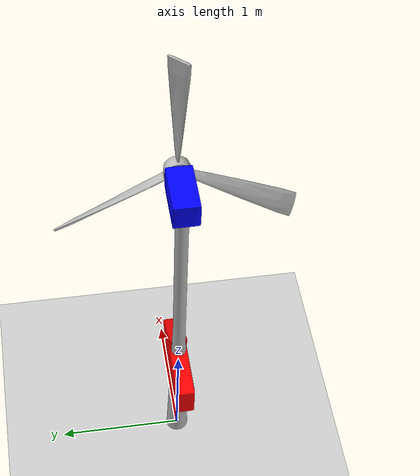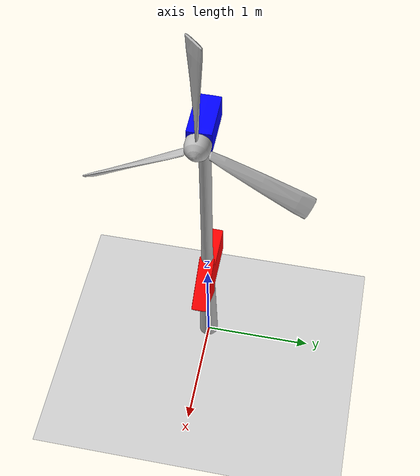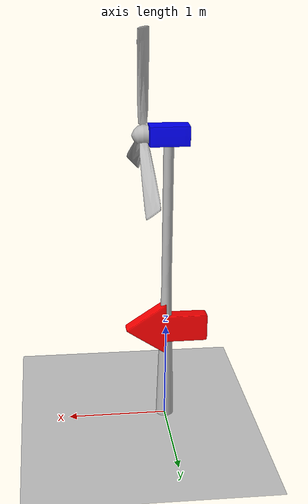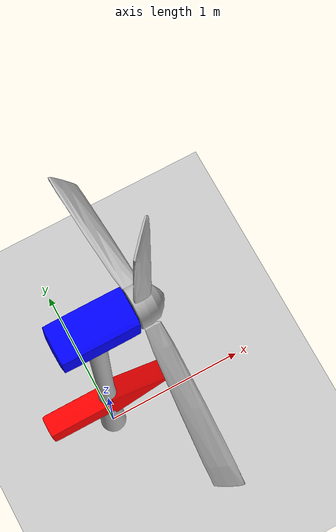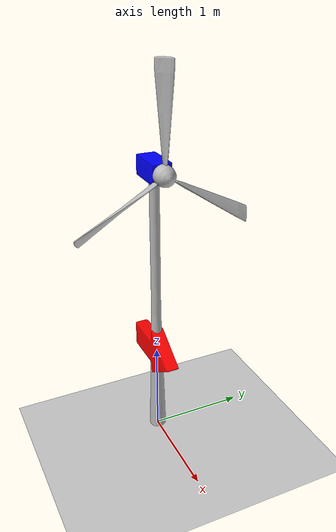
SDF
<?xml version="1.0" ?>
<sdf version="1.5">
  <world name="default">
    <include>
      <uri>model://ground_plane</uri>
    </include>
    <include>
      <uri>model://sun</uri>
    </include>

    <include>
      <uri>model://wind_arrow</uri>
    </include>

    <include>
      <uri>model://wind_power_plant</uri>
    </include>

  </world>
</sdf>

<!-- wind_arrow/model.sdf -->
<sdf version="1.5">
    <model name="wind_arrow">
      <pose>0 0 1  0 0 0</pose>
      <static>true</static>
      <link name="arrow_body">
        <visual name="visual">
          <geometry>
            <mesh><uri>model://wind_arrow/meshes/arrow.dae</uri></mesh>
          </geometry>

	    <material>
	      <ambient>1 0 0 1</ambient>
	      <diffuse>1 0 0 1</diffuse>
	      <specular>0.1 0.1 0.1 1</specular>
	      <emissive>0 0 0 0</emissive>
	    </material>

        </visual>
      </link>
      <plugin name="wind_arrow" filename="libwind_arrow_model.so" />
    </model>
</sdf>

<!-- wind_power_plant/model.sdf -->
<sdf version="1.5">
  <model name="wind_power_plant">
      <static>false</static>
      <link name="tower">
	<collision name='collision'>
          <geometry>
	    <mesh><uri>model://wind_power_plant/meshes/tower.dae</uri></mesh>
          </geometry>
	</collision>

	<pose>0 0 0  0 0 0</pose>
        <visual name="visual">
          <geometry>
            <mesh><uri>model://wind_power_plant/meshes/tower.dae</uri></mesh>
          </geometry>
        </visual>
      </link>

      <joint name="tower_base" type="fixed">
	<child>tower</child>
	<parent>world</parent>
	<axis>
	  <xyz>0 0 1</xyz>
	</axis>
      </joint>

      <link name="gondola">
	<pose>0 0 3  0 0 0</pose>
	<collision name='collision'>
          <geometry>
            <mesh><uri>model://wind_power_plant/meshes/gondola.dae</uri></mesh>
          </geometry>
	</collision>

        <visual name="visual">
          <geometry>
            <mesh><uri>model://wind_power_plant/meshes/gondola.dae</uri></mesh>
          </geometry>

	    <material>
	      <ambient>1 0 0 1</ambient>
	      <diffuse>0 0 1 1</diffuse>
	      <specular>0.1 0.1 0.1 1</specular>
	      <emissive>0 0 0 0</emissive>
	    </material>

        </visual>

	<inertial>
	  <mass>1.0</mass>
	</inertial>

      </link>

      <link name="turbine">
	<pose>0.25 0 3  0 0 0</pose>

	<collision name='collision'>
          <geometry>
	    <mesh><uri>model://wind_power_plant/meshes/turbine.dae</uri></mesh>
          </geometry>
	</collision>

        <visual name="visual">
          <geometry>
            <mesh><uri>model://wind_power_plant/meshes/turbine.dae</uri></mesh>
          </geometry>
        </visual>
      </link>

      <joint type="revolute" name="gondola_hinge">
        <pose>0 0 0 0 0 0</pose>
        <child>gondola</child>
        <parent>tower</parent>
        <axis>
          <xyz>0 0 1</xyz>
	  <dynamics>
	    <friction>1</friction>
	  </dynamics>
        </axis>
      </joint>

      <joint type="revolute" name="turbine_hinge">
        <pose>0 0 0 0 0 0</pose>
        <child>turbine</child>
        <parent>gondola</parent>
        <axis>
          <xyz>1 0 0</xyz>
        </axis>
      </joint>

    </model>
</sdf>
